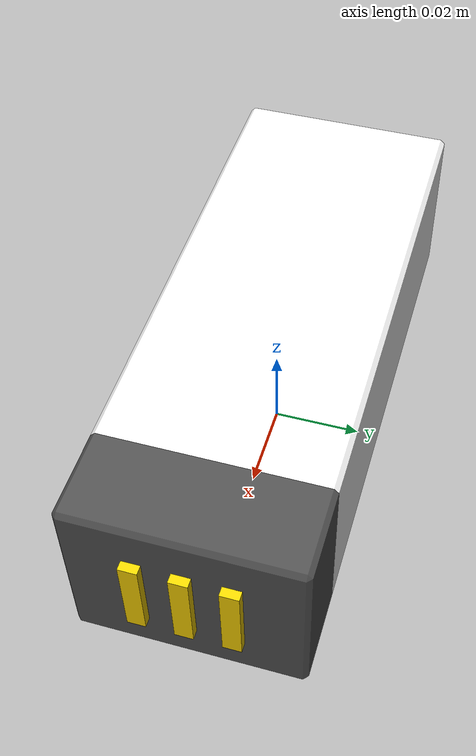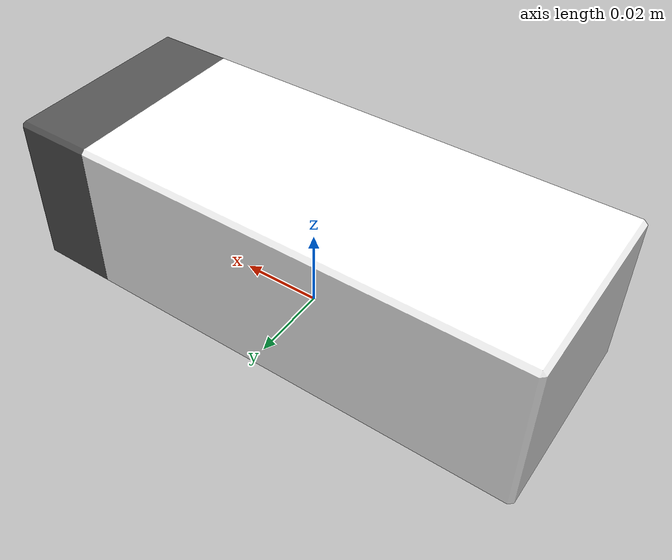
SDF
<?xml version="1.0" ?>
<sdf version="1.6">
  <model name="battery">
    <static>false</static>
    <allow_auto_disable>false</allow_auto_disable>

    <link name="battery_link">
      <inertial>
        <pose>0 0 0.02 0 0 1.57</pose>
        <mass>0.7</mass>
        <inertia>
          <ixx>0.00108</ixx>
          <ixy>0</ixy>
          <ixz>0</ixz>
          <iyy>0.00024</iyy>
          <iyz>0</iyz>
          <izz>0.00113</izz>
        </inertia>
      </inertial>

      <visual name="base">
        <geometry>
          <mesh>
            <uri>model://battery/meshes/battery_base.stl</uri>
          </mesh>
        </geometry>
        <material>
          <ambient>1.0 1.0 1.0 1.0</ambient>
          <diffuse>1.0 1.0 1.0 1.0</diffuse>
        </material>
      </visual>

      <visual name="cap">
        <geometry>
          <mesh>
            <uri>model://battery/meshes/battery_cap.stl</uri>
          </mesh>
        </geometry>
        <material>
          <ambient>0.318 0.318 0.318 1.0</ambient>
          <diffuse>0.318 0.318 0.318 1.0</diffuse>
        </material>
      </visual>

      <visual name="pins">
        <geometry>
          <mesh>
            <uri>model://battery/meshes/battery_pins.stl</uri>
          </mesh>
        </geometry>
        <material>
          <ambient>1.0 0.843 0.0 1.0</ambient>
          <diffuse>1.0 0.843 0.0 1.0</diffuse>
        </material>
      </visual>

      <collision name="collision">
        <pose>0 0 0.02 0 0 0</pose>
        <geometry>
          <box>
            <size>0.13 0.05 0.04</size>
          </box>
        </geometry>
        <max_contacts>20</max_contacts>
        <surface>
          <contact>
            <ode>
              <max_vel>0.0</max_vel>
              <min_depth>0.1</min_depth>
            </ode>
          </contact>
          <friction>
            <ode>
              <mu>1000</mu>
              <mu2>1000</mu2>
            </ode>
          </friction>
        </surface>
      </collision>
    </link>
  </model>
</sdf>
